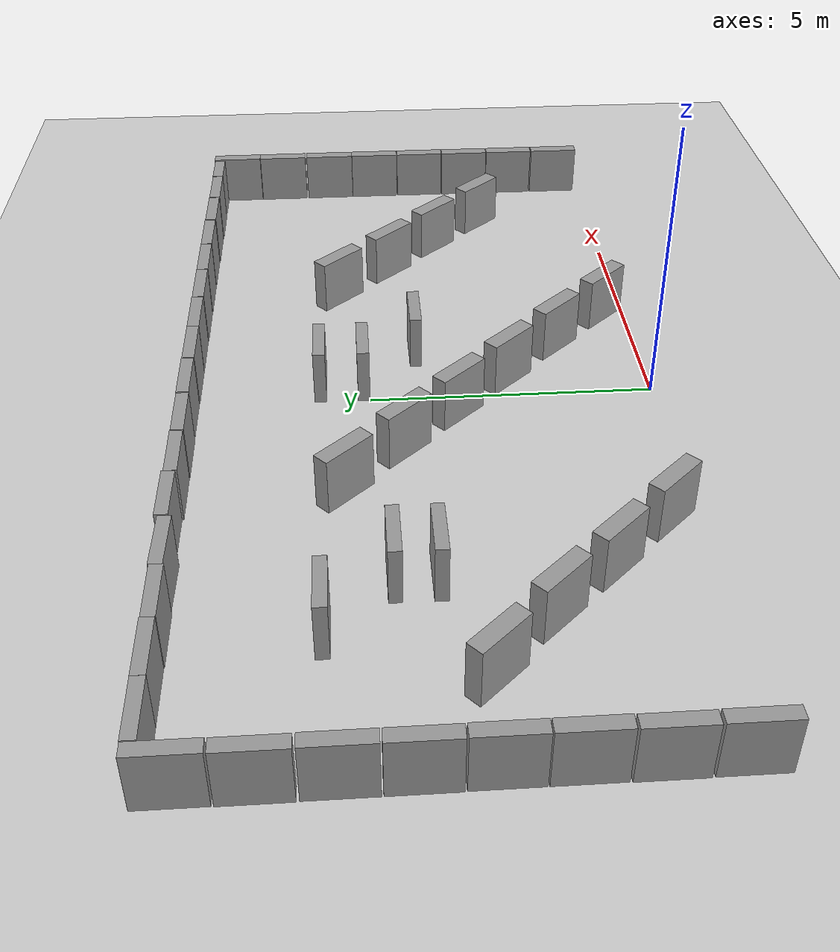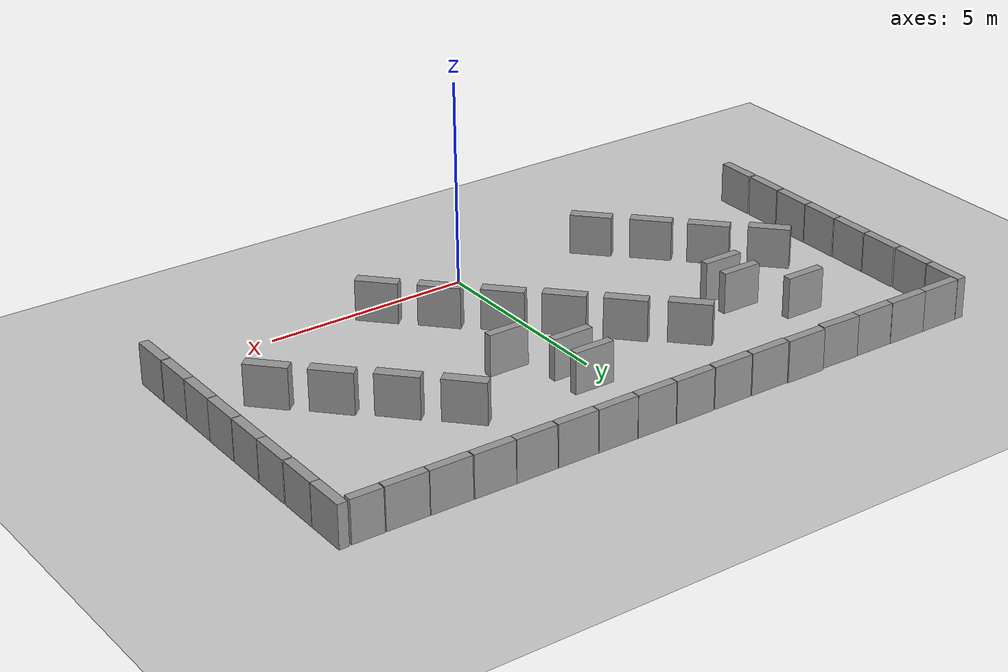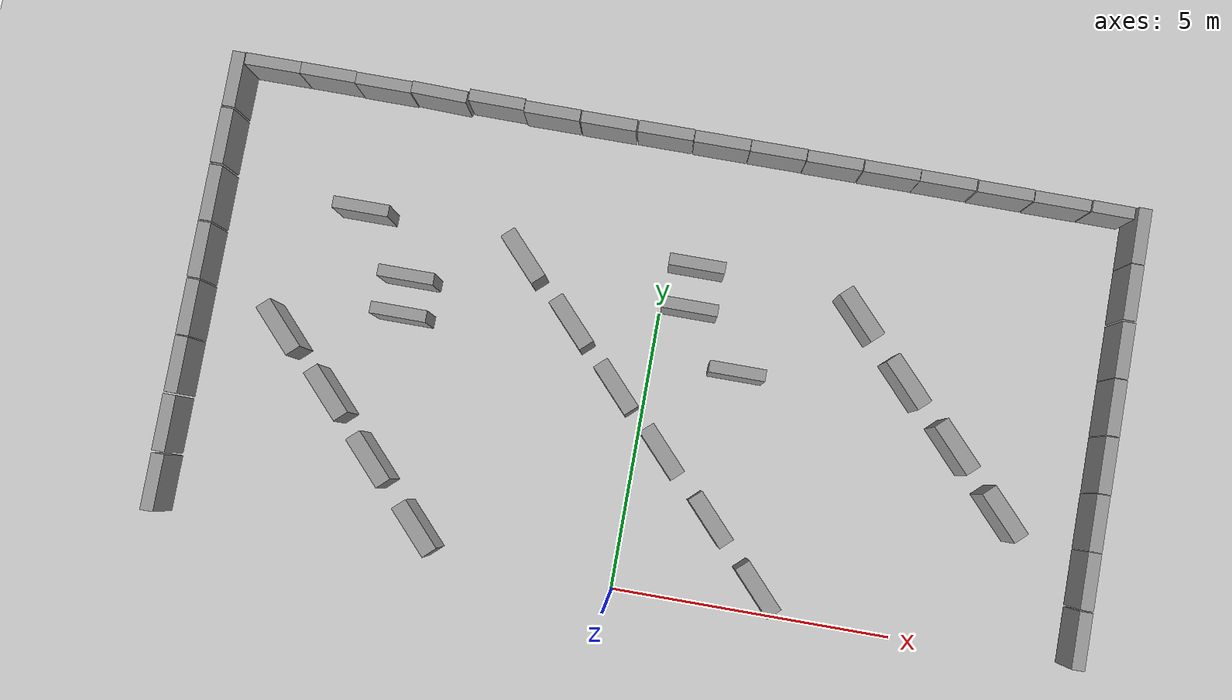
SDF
<sdf version="1.6">
 <world name="default">
  <model name="ground_plane">
   <static>1</static>
   <static>1</static>
   <link name="link">
    <collision name="collision">
     <geometry><plane><normal>0 0 1</normal><size>100 100</size></plane></geometry>
     <surface><friction><ode><mu>100</mu><mu2>50</mu2></ode></friction></surface>
    </collision>
    <visual name="visual">
     <cast_shadows>0</cast_shadows>
     <geometry><plane><normal>0 0 1</normal><size>100 100</size></plane></geometry>
     <material>
      <script><uri>file://media/materials/scripts/gazebo.material</uri><name>Gazebo/Grey</name></script>
     </material>
    </visual>
   </link>
  </model>
  <model name="unit_box_clone">
   <pose>-7.49845 8.11965 0.5 0 -0 0.00022</pose>
   <link name="link">
    <inertial>
     <mass>1</mass>
     <inertia>
      <ixx>0.166667</ixx>
      <ixy>0</ixy>
      <ixz>0</ixz>
      <iyy>0.166667</iyy>
      <iyz>0</iyz>
      <izz>0.166667</izz>
     </inertia>
    </inertial>
    <collision name="collision"><geometry><box><size>1 0.210541 1</size></box></geometry></collision>
    <visual name="visual">
     <geometry><box><size>1 0.210541 1</size></box></geometry>
     <material>
      <script><name>Gazebo/Grey</name><uri>file://media/materials/scripts/gazebo.material</uri></script>
     </material>
    </visual>
   </link>
  </model>
  <model name="unit_box_clone_0">
   <pose>-6.4973 8.1202 0.5 0 0 -0.002315</pose>
   <link name="link">
    <inertial>
     <mass>1</mass>
     <inertia>
      <ixx>0.166667</ixx>
      <ixy>0</ixy>
      <ixz>0</ixz>
      <iyy>0.166667</iyy>
      <iyz>0</iyz>
      <izz>0.166667</izz>
     </inertia>
    </inertial>
    <collision name="collision"><geometry><box><size>1 0.210541 1</size></box></geometry></collision>
    <visual name="visual">
     <geometry><box><size>1 0.210541 1</size></box></geometry>
     <material>
      <script><name>Gazebo/Grey</name><uri>file://media/materials/scripts/gazebo.material</uri></script>
     </material>
    </visual>
   </link>
  </model>
  <model name="unit_box_clone_1">
   <pose>-5.49732 8.10895 0.5 0 0 -0.002307</pose>
   <link name="link">
    <inertial>
     <mass>1</mass>
     <inertia>
      <ixx>0.166667</ixx>
      <ixy>0</ixy>
      <ixz>0</ixz>
      <iyy>0.166667</iyy>
      <iyz>0</iyz>
      <izz>0.166667</izz>
     </inertia>
    </inertial>
    <collision name="collision"><geometry><box><size>1 0.210541 1</size></box></geometry></collision>
    <visual name="visual">
     <geometry><box><size>1 0.210541 1</size></box></geometry>
     <material>
      <script><name>Gazebo/Grey</name><uri>file://media/materials/scripts/gazebo.material</uri></script>
     </material>
    </visual>
   </link>
  </model>
  <model name="unit_box_clone_2">
   <pose>-4.49484 8.11103 0.5 0 0 -0.026959</pose>
   <link name="link">
    <inertial>
     <mass>1</mass>
     <inertia>
      <ixx>0.166667</ixx>
      <ixy>0</ixy>
      <ixz>0</ixz>
      <iyy>0.166667</iyy>
      <iyz>0</iyz>
      <izz>0.166667</izz>
     </inertia>
    </inertial>
    <collision name="collision"><geometry><box><size>1 0.210541 1</size></box></geometry></collision>
    <visual name="visual">
     <geometry><box><size>1 0.210541 1</size></box></geometry>
     <material>
      <script><name>Gazebo/Grey</name><uri>file://media/materials/scripts/gazebo.material</uri></script>
     </material>
    </visual>
   </link>
  </model>
  <model name="unit_box_clone_3">
   <pose>-3.46835 8.14979 0.5 -0 -0 -0.007821</pose>
   <link name="link">
    <inertial>
     <mass>1</mass>
     <inertia>
      <ixx>0.166667</ixx>
      <ixy>0</ixy>
      <ixz>0</ixz>
      <iyy>0.166667</iyy>
      <iyz>0</iyz>
      <izz>0.166667</izz>
     </inertia>
    </inertial>
    <collision name="collision"><geometry><box><size>1 0.210541 1</size></box></geometry></collision>
    <visual name="visual">
     <geometry><box><size>1 0.210541 1</size></box></geometry>
     <material>
      <script><name>Gazebo/Grey</name><uri>file://media/materials/scripts/gazebo.material</uri></script>
     </material>
    </visual>
   </link>
  </model>
  <model name="unit_box_clone_4">
   <pose>-2.46316 8.11834 0.5 0 -0 0.00022</pose>
   <link name="link">
    <inertial>
     <mass>1</mass>
     <inertia>
      <ixx>0.166667</ixx>
      <ixy>0</ixy>
      <ixz>0</ixz>
      <iyy>0.166667</iyy>
      <iyz>0</iyz>
      <izz>0.166667</izz>
     </inertia>
    </inertial>
    <collision name="collision"><geometry><box><size>1 0.210541 1</size></box></geometry></collision>
    <visual name="visual">
     <geometry><box><size>1 0.210541 1</size></box></geometry>
     <material>
      <script><name>Gazebo/Grey</name><uri>file://media/materials/scripts/gazebo.material</uri></script>
     </material>
    </visual>
   </link>
  </model>
  <model name="unit_box_clone_5">
   <pose>-1.44425 8.11167 0.5 0 -0 0.00022</pose>
   <link name="link">
    <inertial>
     <mass>1</mass>
     <inertia>
      <ixx>0.166667</ixx>
      <ixy>0</ixy>
      <ixz>0</ixz>
      <iyy>0.166667</iyy>
      <iyz>0</iyz>
      <izz>0.166667</izz>
     </inertia>
    </inertial>
    <collision name="collision"><geometry><box><size>1 0.210541 1</size></box></geometry></collision>
    <visual name="visual">
     <geometry><box><size>1 0.210541 1</size></box></geometry>
     <material>
      <script><name>Gazebo/Grey</name><uri>file://media/materials/scripts/gazebo.material</uri></script>
     </material>
    </visual>
   </link>
  </model>
  <model name="unit_box_clone_6">
   <pose>-0.418684 8.11833 0.5 0 -0 0.00022</pose>
   <link name="link">
    <inertial>
     <mass>1</mass>
     <inertia>
      <ixx>0.166667</ixx>
      <ixy>0</ixy>
      <ixz>0</ixz>
      <iyy>0.166667</iyy>
      <iyz>0</iyz>
      <izz>0.166667</izz>
     </inertia>
    </inertial>
    <collision name="collision"><geometry><box><size>1 0.210541 1</size></box></geometry></collision>
    <visual name="visual">
     <geometry><box><size>1 0.210541 1</size></box></geometry>
     <material>
      <script><name>Gazebo/Grey</name><uri>file://media/materials/scripts/gazebo.material</uri></script>
     </material>
    </visual>
   </link>
  </model>
  <model name="unit_box_clone_7">
   <pose>0.592835 8.1112 0.5 0 -0 0.00022</pose>
   <link name="link">
    <inertial>
     <mass>1</mass>
     <inertia>
      <ixx>0.166667</ixx>
      <ixy>0</ixy>
      <ixz>0</ixz>
      <iyy>0.166667</iyy>
      <iyz>0</iyz>
      <izz>0.166667</izz>
     </inertia>
    </inertial>
    <collision name="collision"><geometry><box><size>1 0.210541 1</size></box></geometry></collision>
    <visual name="visual">
     <geometry><box><size>1 0.210541 1</size></box></geometry>
     <material>
      <script><name>Gazebo/Grey</name><uri>file://media/materials/scripts/gazebo.material</uri></script>
     </material>
    </visual>
   </link>
  </model>
  <model name="unit_box_clone_8">
   <pose>1.60043 8.1097 0.5 0 -0 0.00022</pose>
   <link name="link">
    <inertial>
     <mass>1</mass>
     <inertia>
      <ixx>0.166667</ixx>
      <ixy>0</ixy>
      <ixz>0</ixz>
      <iyy>0.166667</iyy>
      <iyz>0</iyz>
      <izz>0.166667</izz>
     </inertia>
    </inertial>
    <collision name="collision"><geometry><box><size>1 0.210541 1</size></box></geometry></collision>
    <visual name="visual">
     <geometry><box><size>1 0.210541 1</size></box></geometry>
     <material>
      <script><name>Gazebo/Grey</name><uri>file://media/materials/scripts/gazebo.material</uri></script>
     </material>
    </visual>
   </link>
  </model>
  <model name="unit_box_clone_9">
   <pose>2.60987 8.10252 0.5 0 -0 0.00022</pose>
   <link name="link">
    <inertial>
     <mass>1</mass>
     <inertia>
      <ixx>0.166667</ixx>
      <ixy>0</ixy>
      <ixz>0</ixz>
      <iyy>0.166667</iyy>
      <iyz>0</iyz>
      <izz>0.166667</izz>
     </inertia>
    </inertial>
    <collision name="collision"><geometry><box><size>1 0.210541 1</size></box></geometry></collision>
    <visual name="visual">
     <geometry><box><size>1 0.210541 1</size></box></geometry>
     <material>
      <script><name>Gazebo/Grey</name><uri>file://media/materials/scripts/gazebo.material</uri></script>
     </material>
    </visual>
   </link>
  </model>
  <model name="unit_box_clone_10">
   <pose>3.62649 8.09892 0.5 0 -0 0.00022</pose>
   <link name="link">
    <inertial>
     <mass>1</mass>
     <inertia>
      <ixx>0.166667</ixx>
      <ixy>0</ixy>
      <ixz>0</ixz>
      <iyy>0.166667</iyy>
      <iyz>0</iyz>
      <izz>0.166667</izz>
     </inertia>
    </inertial>
    <collision name="collision"><geometry><box><size>1 0.210541 1</size></box></geometry></collision>
    <visual name="visual">
     <geometry><box><size>1 0.210541 1</size></box></geometry>
     <material>
      <script><name>Gazebo/Grey</name><uri>file://media/materials/scripts/gazebo.material</uri></script>
     </material>
    </visual>
   </link>
  </model>
  <model name="unit_box_clone_11">
   <pose>4.6331 8.0949 0.499999 1e-06 2e-06 -0.003264</pose>
   <link name="link">
    <inertial>
     <mass>1</mass>
     <inertia>
      <ixx>0.166667</ixx>
      <ixy>0</ixy>
      <ixz>0</ixz>
      <iyy>0.166667</iyy>
      <iyz>0</iyz>
      <izz>0.166667</izz>
     </inertia>
    </inertial>
    <collision name="collision"><geometry><box><size>1 0.210541 1</size></box></geometry></collision>
    <visual name="visual">
     <geometry><box><size>1 0.210541 1</size></box></geometry>
     <material>
      <script><name>Gazebo/Grey</name><uri>file://media/materials/scripts/gazebo.material</uri></script>
     </material>
    </visual>
   </link>
  </model>
  <model name="unit_box_0_clone_0">
   <pose>8.11522 6.68458 0.5 1e-06 1e-06 -0.000394</pose>
   <link name="link">
    <inertial>
     <mass>1</mass>
     <inertia>
      <ixx>0.166667</ixx>
      <ixy>0</ixy>
      <ixz>0</ixz>
      <iyy>0.166667</iyy>
      <iyz>0</iyz>
      <izz>0.166667</izz>
     </inertia>
    </inertial>
    <collision name="collision"><geometry><box><size>0.230819 1 1</size></box></geometry></collision>
    <visual name="visual">
     <geometry><box><size>0.230819 1 1</size></box></geometry>
     <material>
      <script><name>Gazebo/Grey</name><uri>file://media/materials/scripts/gazebo.material</uri></script>
     </material>
    </visual>
   </link>
  </model>
  <model name="unit_box_0_clone_1">
   <pose>8.11915 5.6517 0.5 -1e-06 -1e-06 0.000117</pose>
   <link name="link">
    <inertial>
     <mass>1</mass>
     <inertia>
      <ixx>0.166667</ixx>
      <ixy>0</ixy>
      <ixz>0</ixz>
      <iyy>0.166667</iyy>
      <iyz>0</iyz>
      <izz>0.166667</izz>
     </inertia>
    </inertial>
    <collision name="collision"><geometry><box><size>0.230819 1 1</size></box></geometry></collision>
    <visual name="visual">
     <geometry><box><size>0.230819 1 1</size></box></geometry>
     <material>
      <script><name>Gazebo/Grey</name><uri>file://media/materials/scripts/gazebo.material</uri></script>
     </material>
    </visual>
   </link>
  </model>
  <model name="unit_box_0_clone_2">
   <pose>8.11914 4.64016 0.5 -1e-06 -1e-06 0.000211</pose>
   <link name="link">
    <inertial>
     <mass>1</mass>
     <inertia>
      <ixx>0.166667</ixx>
      <ixy>0</ixy>
      <ixz>0</ixz>
      <iyy>0.166667</iyy>
      <iyz>0</iyz>
      <izz>0.166667</izz>
     </inertia>
    </inertial>
    <collision name="collision"><geometry><box><size>0.230819 1 1</size></box></geometry></collision>
    <visual name="visual">
     <geometry><box><size>0.230819 1 1</size></box></geometry>
     <material>
      <script><name>Gazebo/Grey</name><uri>file://media/materials/scripts/gazebo.material</uri></script>
     </material>
    </visual>
   </link>
  </model>
  <model name="unit_box_0_clone_3">
   <pose>8.11914 3.62228 0.5 -1e-06 -1e-06 0.000192</pose>
   <link name="link">
    <inertial>
     <mass>1</mass>
     <inertia>
      <ixx>0.166667</ixx>
      <ixy>0</ixy>
      <ixz>0</ixz>
      <iyy>0.166667</iyy>
      <iyz>0</iyz>
      <izz>0.166667</izz>
     </inertia>
    </inertial>
    <collision name="collision"><geometry><box><size>0.230819 1 1</size></box></geometry></collision>
    <visual name="visual">
     <geometry><box><size>0.230819 1 1</size></box></geometry>
     <material>
      <script><name>Gazebo/Grey</name><uri>file://media/materials/scripts/gazebo.material</uri></script>
     </material>
    </visual>
   </link>
  </model>
  <model name="unit_box_0_clone_4">
   <pose>8.11332 2.61063 0.5 -1e-06 1e-06 -0.001062</pose>
   <link name="link">
    <inertial>
     <mass>1</mass>
     <inertia>
      <ixx>0.166667</ixx>
      <ixy>0</ixy>
      <ixz>0</ixz>
      <iyy>0.166667</iyy>
      <iyz>0</iyz>
      <izz>0.166667</izz>
     </inertia>
    </inertial>
    <collision name="collision"><geometry><box><size>0.230819 1 1</size></box></geometry></collision>
    <visual name="visual">
     <geometry><box><size>0.230819 1 1</size></box></geometry>
     <material>
      <script><name>Gazebo/Grey</name><uri>file://media/materials/scripts/gazebo.material</uri></script>
     </material>
    </visual>
   </link>
  </model>
  <model name="unit_box_0_clone_5">
   <pose>8.11277 1.59919 0.5 -1e-06 -1e-06 0.000192</pose>
   <link name="link">
    <inertial>
     <mass>1</mass>
     <inertia>
      <ixx>0.166667</ixx>
      <ixy>0</ixy>
      <ixz>0</ixz>
      <iyy>0.166667</iyy>
      <iyz>0</iyz>
      <izz>0.166667</izz>
     </inertia>
    </inertial>
    <collision name="collision"><geometry><box><size>0.230819 1 1</size></box></geometry></collision>
    <visual name="visual">
     <geometry><box><size>0.230819 1 1</size></box></geometry>
     <material>
      <script><name>Gazebo/Grey</name><uri>file://media/materials/scripts/gazebo.material</uri></script>
     </material>
    </visual>
   </link>
  </model>
  <model name="unit_box_0_clone_6">
   <pose>8.11277 0.574938 0.5 -1e-06 -1e-06 0.000192</pose>
   <link name="link">
    <inertial>
     <mass>1</mass>
     <inertia>
      <ixx>0.166667</ixx>
      <ixy>0</ixy>
      <ixz>0</ixz>
      <iyy>0.166667</iyy>
      <iyz>0</iyz>
      <izz>0.166667</izz>
     </inertia>
    </inertial>
    <collision name="collision"><geometry><box><size>0.230819 1 1</size></box></geometry></collision>
    <visual name="visual">
     <geometry><box><size>0.230819 1 1</size></box></geometry>
     <material>
      <script><name>Gazebo/Grey</name><uri>file://media/materials/scripts/gazebo.material</uri></script>
     </material>
    </visual>
   </link>
  </model>
  <model name="unit_box_0_clone_4_clone">
   <pose>-8.12647 7.71769 0.5 -1e-06 -1e-06 0.000192</pose>
   <link name="link">
    <inertial>
     <mass>1</mass>
     <inertia>
      <ixx>0.166667</ixx>
      <ixy>0</ixy>
      <ixz>0</ixz>
      <iyy>0.166667</iyy>
      <iyz>0</iyz>
      <izz>0.166667</izz>
     </inertia>
    </inertial>
    <collision name="collision"><geometry><box><size>0.230819 1 1</size></box></geometry></collision>
    <visual name="visual">
     <geometry><box><size>0.230819 1 1</size></box></geometry>
     <material>
      <script><name>Gazebo/Grey</name><uri>file://media/materials/scripts/gazebo.material</uri></script>
     </material>
    </visual>
   </link>
  </model>
  <model name="unit_box_0_clone_4_clone_0">
   <pose>-8.13281 6.68715 0.5 -1e-06 -1e-06 0.000192</pose>
   <link name="link">
    <inertial>
     <mass>1</mass>
     <inertia>
      <ixx>0.166667</ixx>
      <ixy>0</ixy>
      <ixz>0</ixz>
      <iyy>0.166667</iyy>
      <iyz>0</iyz>
      <izz>0.166667</izz>
     </inertia>
    </inertial>
    <collision name="collision"><geometry><box><size>0.230819 1 1</size></box></geometry></collision>
    <visual name="visual">
     <geometry><box><size>0.230819 1 1</size></box></geometry>
     <material>
      <script><name>Gazebo/Grey</name><uri>file://media/materials/scripts/gazebo.material</uri></script>
     </material>
    </visual>
   </link>
  </model>
  <model name="unit_box_0_clone_4_clone_1">
   <pose>-8.12606 5.64722 0.5 -1e-06 -1e-06 0.000192</pose>
   <link name="link">
    <inertial>
     <mass>1</mass>
     <inertia>
      <ixx>0.166667</ixx>
      <ixy>0</ixy>
      <ixz>0</ixz>
      <iyy>0.166667</iyy>
      <iyz>0</iyz>
      <izz>0.166667</izz>
     </inertia>
    </inertial>
    <collision name="collision"><geometry><box><size>0.230819 1 1</size></box></geometry></collision>
    <visual name="visual">
     <geometry><box><size>0.230819 1 1</size></box></geometry>
     <material>
      <script><name>Gazebo/Grey</name><uri>file://media/materials/scripts/gazebo.material</uri></script>
     </material>
    </visual>
   </link>
  </model>
  <model name="unit_box_0_clone_4_clone_2">
   <pose>-8.12607 4.6208 0.5 -1e-06 -1e-06 0.000192</pose>
   <link name="link">
    <inertial>
     <mass>1</mass>
     <inertia>
      <ixx>0.166667</ixx>
      <ixy>0</ixy>
      <ixz>0</ixz>
      <iyy>0.166667</iyy>
      <iyz>0</iyz>
      <izz>0.166667</izz>
     </inertia>
    </inertial>
    <collision name="collision"><geometry><box><size>0.230819 1 1</size></box></geometry></collision>
    <visual name="visual">
     <geometry><box><size>0.230819 1 1</size></box></geometry>
     <material>
      <script><name>Gazebo/Grey</name><uri>file://media/materials/scripts/gazebo.material</uri></script>
     </material>
    </visual>
   </link>
  </model>
  <model name="unit_box_0_clone_4_clone_3">
   <pose>-8.11932 3.59437 0.5 -1e-06 -1e-06 0.000192</pose>
   <link name="link">
    <inertial>
     <mass>1</mass>
     <inertia>
      <ixx>0.166667</ixx>
      <ixy>0</ixy>
      <ixz>0</ixz>
      <iyy>0.166667</iyy>
      <iyz>0</iyz>
      <izz>0.166667</izz>
     </inertia>
    </inertial>
    <collision name="collision"><geometry><box><size>0.230819 1 1</size></box></geometry></collision>
    <visual name="visual">
     <geometry><box><size>0.230819 1 1</size></box></geometry>
     <material>
      <script><name>Gazebo/Grey</name><uri>file://media/materials/scripts/gazebo.material</uri></script>
     </material>
    </visual>
   </link>
  </model>
  <model name="unit_box_0_clone_4_clone_4">
   <pose>-8.11932 2.57471 0.5 -1e-06 -1e-06 0.000192</pose>
   <link name="link">
    <inertial>
     <mass>1</mass>
     <inertia>
      <ixx>0.166667</ixx>
      <ixy>0</ixy>
      <ixz>0</ixz>
      <iyy>0.166667</iyy>
      <iyz>0</iyz>
      <izz>0.166667</izz>
     </inertia>
    </inertial>
    <collision name="collision"><geometry><box><size>0.230819 1 1</size></box></geometry></collision>
    <visual name="visual">
     <geometry><box><size>0.230819 1 1</size></box></geometry>
     <material>
      <script><name>Gazebo/Grey</name><uri>file://media/materials/scripts/gazebo.material</uri></script>
     </material>
    </visual>
   </link>
  </model>
  <model name="unit_box_0_clone_4_clone_5">
   <pose>-8.12608 1.54157 0.5 -1e-06 -1e-06 0.000192</pose>
   <link name="link">
    <inertial>
     <mass>1</mass>
     <inertia>
      <ixx>0.166667</ixx>
      <ixy>0</ixy>
      <ixz>0</ixz>
      <iyy>0.166667</iyy>
      <iyz>0</iyz>
      <izz>0.166667</izz>
     </inertia>
    </inertial>
    <collision name="collision"><geometry><box><size>0.230819 1 1</size></box></geometry></collision>
    <visual name="visual">
     <geometry><box><size>0.230819 1 1</size></box></geometry>
     <material>
      <script><name>Gazebo/Grey</name><uri>file://media/materials/scripts/gazebo.material</uri></script>
     </material>
    </visual>
   </link>
  </model>
  <model name="unit_box_0_clone_4_clone_6">
   <pose>-8.11933 0.50163 0.5 -1e-06 -1e-06 0.000192</pose>
   <link name="link">
    <inertial>
     <mass>1</mass>
     <inertia>
      <ixx>0.166667</ixx>
      <ixy>0</ixy>
      <ixz>0</ixz>
      <iyy>0.166667</iyy>
      <iyz>0</iyz>
      <izz>0.166667</izz>
     </inertia>
    </inertial>
    <collision name="collision"><geometry><box><size>0.230819 1 1</size></box></geometry></collision>
    <visual name="visual">
     <geometry><box><size>0.230819 1 1</size></box></geometry>
     <material>
      <script><name>Gazebo/Grey</name><uri>file://media/materials/scripts/gazebo.material</uri></script>
     </material>
    </visual>
   </link>
  </model>
  <model name="unit_box_0_clone_0_clone">
   <pose>8.11438 7.69322 0.5 -1e-06 -1e-06 9.9e-05</pose>
   <link name="link">
    <inertial>
     <mass>1</mass>
     <inertia>
      <ixx>0.166667</ixx>
      <ixy>0</ixy>
      <ixz>0</ixz>
      <iyy>0.166667</iyy>
      <iyz>0</iyz>
      <izz>0.166667</izz>
     </inertia>
    </inertial>
    <collision name="collision"><geometry><box><size>0.230819 1 1</size></box></geometry></collision>
    <visual name="visual">
     <geometry><box><size>0.230819 1 1</size></box></geometry>
     <material>
      <script><name>Gazebo/Grey</name><uri>file://media/materials/scripts/gazebo.material</uri></script>
     </material>
    </visual>
   </link>
  </model>
  <model name="unit_box_clone_11_clone">
   <pose>5.6544 8.08325 0.5 -0 -0 -0.002991</pose>
   <link name="link">
    <inertial>
     <mass>1</mass>
     <inertia>
      <ixx>0.166667</ixx>
      <ixy>0</ixy>
      <ixz>0</ixz>
      <iyy>0.166667</iyy>
      <iyz>0</iyz>
      <izz>0.166667</izz>
     </inertia>
    </inertial>
    <collision name="collision"><geometry><box><size>1 0.210541 1</size></box></geometry></collision>
    <visual name="visual">
     <geometry><box><size>1 0.210541 1</size></box></geometry>
     <material>
      <script><name>Gazebo/Grey</name><uri>file://media/materials/scripts/gazebo.material</uri></script>
     </material>
    </visual>
   </link>
  </model>
  <model name="unit_box_clone_11_clone_0">
   <pose>6.6644 8.07309 0.499999 1e-06 2e-06 -0.003186</pose>
   <link name="link">
    <inertial>
     <mass>1</mass>
     <inertia>
      <ixx>0.166667</ixx>
      <ixy>0</ixy>
      <ixz>0</ixz>
      <iyy>0.166667</iyy>
      <iyz>0</iyz>
      <izz>0.166667</izz>
     </inertia>
    </inertial>
    <collision name="collision"><geometry><box><size>1 0.210541 1</size></box></geometry></collision>
    <visual name="visual">
     <geometry><box><size>1 0.210541 1</size></box></geometry>
     <material>
      <script><name>Gazebo/Grey</name><uri>file://media/materials/scripts/gazebo.material</uri></script>
     </material>
    </visual>
   </link>
  </model>
  <model name="unit_box_clone_11_clone_1_clone">
   <pose>7.56438 8.07324 0.499997 2e-06 -8e-06 -0.008661</pose>
   <link name="link">
    <inertial>
     <mass>1</mass>
     <inertia>
      <ixx>0.166667</ixx>
      <ixy>0</ixy>
      <ixz>0</ixz>
      <iyy>0.166667</iyy>
      <iyz>0</iyz>
      <izz>0.166667</izz>
     </inertia>
    </inertial>
    <collision name="collision"><geometry><box><size>0.750223 0.210541 1</size></box></geometry></collision>
    <visual name="visual">
     <geometry><box><size>0.750223 0.210541 1</size></box></geometry>
     <material>
      <script><name>Gazebo/Grey</name><uri>file://media/materials/scripts/gazebo.material</uri></script>
     </material>
    </visual>
   </link>
  </model>
  <model name="unit_box_clone_5_clone_clone_0_clone">
   <pose>-3.51681 0.493475 0.499996 2e-06 7e-06 -0.824443</pose>
   <link name="link">
    <inertial>
     <mass>1</mass>
     <inertia>
      <ixx>0.166667</ixx>
      <ixy>0</ixy>
      <ixz>0</ixz>
      <iyy>0.166667</iyy>
      <iyz>0</iyz>
      <izz>0.166667</izz>
     </inertia>
    </inertial>
    <collision name="collision"><geometry><box><size>1 0.290155 1</size></box></geometry></collision>
    <visual name="visual">
     <geometry><box><size>1 0.290155 1</size></box></geometry>
     <material>
      <script><name>Gazebo/Grey</name><uri>file://media/materials/scripts/gazebo.material</uri></script>
     </material>
    </visual>
   </link>
  </model>
  <model name="unit_box_clone_5_clone_clone_0_clone_6">
   <pose>-4.52248 1.52567 0.499996 -2e-06 -7e-06 -0.824881</pose>
   <link name="link">
    <inertial>
     <mass>1</mass>
     <inertia>
      <ixx>0.166667</ixx>
      <ixy>0</ixy>
      <ixz>0</ixz>
      <iyy>0.166667</iyy>
      <iyz>0</iyz>
      <izz>0.166667</izz>
     </inertia>
    </inertial>
    <collision name="collision"><geometry><box><size>1 0.290155 1</size></box></geometry></collision>
    <visual name="visual">
     <geometry><box><size>1 0.290155 1</size></box></geometry>
     <material>
      <script><name>Gazebo/Grey</name><uri>file://media/materials/scripts/gazebo.material</uri></script>
     </material>
    </visual>
   </link>
  </model>
  <model name="unit_box_clone_5_clone_clone_0_clone_7">
   <pose>-5.46421 2.53716 0.5 0 0 -0.824899</pose>
   <link name="link">
    <inertial>
     <mass>1</mass>
     <inertia>
      <ixx>0.166667</ixx>
      <ixy>0</ixy>
      <ixz>0</ixz>
      <iyy>0.166667</iyy>
      <iyz>0</iyz>
      <izz>0.166667</izz>
     </inertia>
    </inertial>
    <collision name="collision"><geometry><box><size>1 0.290155 1</size></box></geometry></collision>
    <visual name="visual">
     <geometry><box><size>1 0.290155 1</size></box></geometry>
     <material>
      <script><name>Gazebo/Grey</name><uri>file://media/materials/scripts/gazebo.material</uri></script>
     </material>
    </visual>
   </link>
  </model>
  <model name="unit_box_clone_5_clone_clone_0_clone_8">
   <pose>-6.50187 3.52248 0.499995 1e-06 1e-05 -0.825007</pose>
   <link name="link">
    <inertial>
     <mass>1</mass>
     <inertia>
      <ixx>0.166667</ixx>
      <ixy>0</ixy>
      <ixz>0</ixz>
      <iyy>0.166667</iyy>
      <iyz>0</iyz>
      <izz>0.166667</izz>
     </inertia>
    </inertial>
    <collision name="collision"><geometry><box><size>1 0.290155 1</size></box></geometry></collision>
    <visual name="visual">
     <geometry><box><size>1 0.290155 1</size></box></geometry>
     <material>
      <script><name>Gazebo/Grey</name><uri>file://media/materials/scripts/gazebo.material</uri></script>
     </material>
    </visual>
   </link>
  </model>
  <model name="unit_box_clone_5_clone_clone_0_clone_9">
   <pose>1.50288 1.51691 0.5 -0 -0 -0.825026</pose>
   <link name="link">
    <inertial>
     <mass>1</mass>
     <inertia>
      <ixx>0.166667</ixx>
      <ixy>0</ixy>
      <ixz>0</ixz>
      <iyy>0.166667</iyy>
      <iyz>0</iyz>
      <izz>0.166667</izz>
     </inertia>
    </inertial>
    <collision name="collision"><geometry><box><size>1 0.290155 1</size></box></geometry></collision>
    <visual name="visual">
     <geometry><box><size>1 0.290155 1</size></box></geometry>
     <material>
      <script><name>Gazebo/Grey</name><uri>file://media/materials/scripts/gazebo.material</uri></script>
     </material>
    </visual>
   </link>
  </model>
  <model name="unit_box_clone_5_clone_clone_0_clone_10">
   <pose>0.473949 2.52841 0.5 0 0 -0.825098</pose>
   <link name="link">
    <inertial>
     <mass>1</mass>
     <inertia>
      <ixx>0.166667</ixx>
      <ixy>0</ixy>
      <ixz>0</ixz>
      <iyy>0.166667</iyy>
      <iyz>0</iyz>
      <izz>0.166667</izz>
     </inertia>
    </inertial>
    <collision name="collision"><geometry><box><size>1 0.290155 1</size></box></geometry></collision>
    <visual name="visual">
     <geometry><box><size>1 0.290155 1</size></box></geometry>
     <material>
      <script><name>Gazebo/Grey</name><uri>file://media/materials/scripts/gazebo.material</uri></script>
     </material>
    </visual>
   </link>
  </model>
  <model name="unit_box_clone_5_clone_clone_0_clone_11">
   <pose>-0.511365 3.50505 0.499996 -2e-06 -7e-06 -0.825174</pose>
   <link name="link">
    <inertial>
     <mass>1</mass>
     <inertia>
      <ixx>0.166667</ixx>
      <ixy>0</ixy>
      <ixz>0</ixz>
      <iyy>0.166667</iyy>
      <iyz>0</iyz>
      <izz>0.166667</izz>
     </inertia>
    </inertial>
    <collision name="collision"><geometry><box><size>1 0.290155 1</size></box></geometry></collision>
    <visual name="visual">
     <geometry><box><size>1 0.290155 1</size></box></geometry>
     <material>
      <script><name>Gazebo/Grey</name><uri>file://media/materials/scripts/gazebo.material</uri></script>
     </material>
    </visual>
   </link>
  </model>
  <model name="unit_box_clone_5_clone_clone_0_clone_12">
   <pose>-1.47998 4.4884 0.5 -0 -0 -0.825208</pose>
   <link name="link">
    <inertial>
     <mass>1</mass>
     <inertia>
      <ixx>0.166667</ixx>
      <ixy>0</ixy>
      <ixz>0</ixz>
      <iyy>0.166667</iyy>
      <iyz>0</iyz>
      <izz>0.166667</izz>
     </inertia>
    </inertial>
    <collision name="collision"><geometry><box><size>1 0.290155 1</size></box></geometry></collision>
    <visual name="visual">
     <geometry><box><size>1 0.290155 1</size></box></geometry>
     <material>
      <script><name>Gazebo/Grey</name><uri>file://media/materials/scripts/gazebo.material</uri></script>
     </material>
    </visual>
   </link>
  </model>
  <model name="unit_box_clone_5_clone_clone_0_clone_13">
   <pose>-2.5151 5.48941 0.499996 2e-06 7e-06 -0.825318</pose>
   <link name="link">
    <inertial>
     <mass>1</mass>
     <inertia>
      <ixx>0.166667</ixx>
      <ixy>0</ixy>
      <ixz>0</ixz>
      <iyy>0.166667</iyy>
      <iyz>0</iyz>
      <izz>0.166667</izz>
     </inertia>
    </inertial>
    <collision name="collision"><geometry><box><size>1 0.290155 1</size></box></geometry></collision>
    <visual name="visual">
     <geometry><box><size>1 0.290155 1</size></box></geometry>
     <material>
      <script><name>Gazebo/Grey</name><uri>file://media/materials/scripts/gazebo.material</uri></script>
     </material>
    </visual>
   </link>
  </model>
  <model name="unit_box_clone_5_clone_clone_0_clone_14">
   <pose>2.50426 0.480756 0.5 0 0 -0.825339</pose>
   <link name="link">
    <inertial>
     <mass>1</mass>
     <inertia>
      <ixx>0.166667</ixx>
      <ixy>0</ixy>
      <ixz>0</ixz>
      <iyy>0.166667</iyy>
      <iyz>0</iyz>
      <izz>0.166667</izz>
     </inertia>
    </inertial>
    <collision name="collision"><geometry><box><size>1 0.290155 1</size></box></geometry></collision>
    <visual name="visual">
     <geometry><box><size>1 0.290155 1</size></box></geometry>
     <material>
      <script><name>Gazebo/Grey</name><uri>file://media/materials/scripts/gazebo.material</uri></script>
     </material>
    </visual>
   </link>
  </model>
  <model name="unit_box_clone_5_clone_clone_0_clone_26">
   <pose>3.50441 5.49603 0.499995 -1e-06 -1e-05 -0.826136</pose>
   <link name="link">
    <inertial>
     <mass>1</mass>
     <inertia>
      <ixx>0.166667</ixx>
      <ixy>0</ixy>
      <ixz>0</ixz>
      <iyy>0.166667</iyy>
      <iyz>0</iyz>
      <izz>0.166667</izz>
     </inertia>
    </inertial>
    <collision name="collision"><geometry><box><size>1 0.290155 1</size></box></geometry></collision>
    <visual name="visual">
     <geometry><box><size>1 0.290155 1</size></box></geometry>
     <material>
      <script><name>Gazebo/Grey</name><uri>file://media/materials/scripts/gazebo.material</uri></script>
     </material>
    </visual>
   </link>
  </model>
  <model name="unit_box_clone_5_clone_clone_0_clone_27">
   <pose>4.49657 4.47017 0.5 0 0 -0.826159</pose>
   <link name="link">
    <inertial>
     <mass>1</mass>
     <inertia>
      <ixx>0.166667</ixx>
      <ixy>0</ixy>
      <ixz>0</ixz>
      <iyy>0.166667</iyy>
      <iyz>0</iyz>
      <izz>0.166667</izz>
     </inertia>
    </inertial>
    <collision name="collision"><geometry><box><size>1 0.290155 1</size></box></geometry></collision>
    <visual name="visual">
     <geometry><box><size>1 0.290155 1</size></box></geometry>
     <material>
      <script><name>Gazebo/Grey</name><uri>file://media/materials/scripts/gazebo.material</uri></script>
     </material>
    </visual>
   </link>
  </model>
  <model name="unit_box_clone_5_clone_clone_0_clone_28">
   <pose>5.50007 3.4959 0.5 -0 -0 -0.826216</pose>
   <link name="link">
    <inertial>
     <mass>1</mass>
     <inertia>
      <ixx>0.166667</ixx>
      <ixy>0</ixy>
      <ixz>0</ixz>
      <iyy>0.166667</iyy>
      <iyz>0</iyz>
      <izz>0.166667</izz>
     </inertia>
    </inertial>
    <collision name="collision"><geometry><box><size>1 0.290155 1</size></box></geometry></collision>
    <visual name="visual">
     <geometry><box><size>1 0.290155 1</size></box></geometry>
     <material>
      <script><name>Gazebo/Grey</name><uri>file://media/materials/scripts/gazebo.material</uri></script>
     </material>
    </visual>
   </link>
  </model>
  <model name="unit_box_clone_5_clone_clone_0_clone_29">
   <pose>6.49209 2.48601 0.5 -0 -0 -0.826274</pose>
   <link name="link">
    <inertial>
     <mass>1</mass>
     <inertia>
      <ixx>0.166667</ixx>
      <ixy>0</ixy>
      <ixz>0</ixz>
      <iyy>0.166667</iyy>
      <iyz>0</iyz>
      <izz>0.166667</izz>
     </inertia>
    </inertial>
    <collision name="collision"><geometry><box><size>1 0.290155 1</size></box></geometry></collision>
    <visual name="visual">
     <geometry><box><size>1 0.290155 1</size></box></geometry>
     <material>
      <script><name>Gazebo/Grey</name><uri>file://media/materials/scripts/gazebo.material</uri></script>
     </material>
    </visual>
   </link>
  </model>
  <model name="unit_box_clone_1_clone">
   <pose>-5.4809 5.86042 0.5 0 -0 -0.002342</pose>
   <link name="link">
    <inertial>
     <mass>1</mass>
     <inertia>
      <ixx>0.166667</ixx>
      <ixy>0</ixy>
      <ixz>0</ixz>
      <iyy>0.166667</iyy>
      <iyz>0</iyz>
      <izz>0.166667</izz>
     </inertia>
    </inertial>
    <collision name="collision"><geometry><box><size>1 0.210541 1</size></box></geometry></collision>
    <visual name="visual">
     <geometry><box><size>1 0.210541 1</size></box></geometry>
     <material>
      <script><name>Gazebo/Grey</name><uri>file://media/materials/scripts/gazebo.material</uri></script>
     </material>
    </visual>
   </link>
  </model>
  <model name="unit_box_clone_1_clone_0">
   <pose>-4.47639 4.81024 0.5 0 0 -0.002289</pose>
   <link name="link">
    <inertial>
     <mass>1</mass>
     <inertia>
      <ixx>0.166667</ixx>
      <ixy>0</ixy>
      <ixz>0</ixz>
      <iyy>0.166667</iyy>
      <iyz>0</iyz>
      <izz>0.166667</izz>
     </inertia>
    </inertial>
    <collision name="collision"><geometry><box><size>1 0.210541 1</size></box></geometry></collision>
    <visual name="visual">
     <geometry><box><size>1 0.210541 1</size></box></geometry>
     <material>
      <script><name>Gazebo/Grey</name><uri>file://media/materials/scripts/gazebo.material</uri></script>
     </material>
    </visual>
   </link>
  </model>
  <model name="unit_box_clone_1_clone_4">
   <pose>-4.48358 4.14225 0.499999 -1e-06 -2e-06 -0.002326</pose>
   <link name="link">
    <inertial>
     <mass>1</mass>
     <inertia>
      <ixx>0.166667</ixx>
      <ixy>0</ixy>
      <ixz>0</ixz>
      <iyy>0.166667</iyy>
      <iyz>0</iyz>
      <izz>0.166667</izz>
     </inertia>
    </inertial>
    <collision name="collision"><geometry><box><size>1 0.210541 1</size></box></geometry></collision>
    <visual name="visual">
     <geometry><box><size>1 0.210541 1</size></box></geometry>
     <material>
      <script><name>Gazebo/Grey</name><uri>file://media/materials/scripts/gazebo.material</uri></script>
     </material>
    </visual>
   </link>
  </model>
  <model name="unit_box_clone_1_clone_5">
   <pose>0.5199 5.87965 0.5 0 0 -0.002306</pose>
   <link name="link">
    <inertial>
     <mass>1</mass>
     <inertia>
      <ixx>0.166667</ixx>
      <ixy>0</ixy>
      <ixz>0</ixz>
      <iyy>0.166667</iyy>
      <iyz>0</iyz>
      <izz>0.166667</izz>
     </inertia>
    </inertial>
    <collision name="collision"><geometry><box><size>1 0.210541 1</size></box></geometry></collision>
    <visual name="visual">
     <geometry><box><size>1 0.210541 1</size></box></geometry>
     <material>
      <script><name>Gazebo/Grey</name><uri>file://media/materials/scripts/gazebo.material</uri></script>
     </material>
    </visual>
   </link>
  </model>
  <model name="unit_box_clone_1_clone_6">
   <pose>0.519897 5.11631 0.499999 -1e-06 2e-06 -0.002326</pose>
   <link name="link">
    <inertial>
     <mass>1</mass>
     <inertia>
      <ixx>0.166667</ixx>
      <ixy>0</ixy>
      <ixz>0</ixz>
      <iyy>0.166667</iyy>
      <iyz>0</iyz>
      <izz>0.166667</izz>
     </inertia>
    </inertial>
    <collision name="collision"><geometry><box><size>1 0.210541 1</size></box></geometry></collision>
    <visual name="visual">
     <geometry><box><size>1 0.210541 1</size></box></geometry>
     <material>
      <script><name>Gazebo/Grey</name><uri>file://media/materials/scripts/gazebo.material</uri></script>
     </material>
    </visual>
   </link>
  </model>
  <model name="unit_box_clone_1_clone_7">
   <pose>1.52748 4.13924 0.5 -0 -0 -0.002346</pose>
   <link name="link">
    <inertial>
     <mass>1</mass>
     <inertia>
      <ixx>0.166667</ixx>
      <ixy>0</ixy>
      <ixz>0</ixz>
      <iyy>0.166667</iyy>
      <iyz>0</iyz>
      <izz>0.166667</izz>
     </inertia>
    </inertial>
    <collision name="collision"><geometry><box><size>1 0.210541 1</size></box></geometry></collision>
    <visual name="visual">
     <geometry><box><size>1 0.210541 1</size></box></geometry>
     <material>
      <script><name>Gazebo/Grey</name><uri>file://media/materials/scripts/gazebo.material</uri></script>
     </material>
    </visual>
   </link>
  </model>
 </world>
</sdf>
